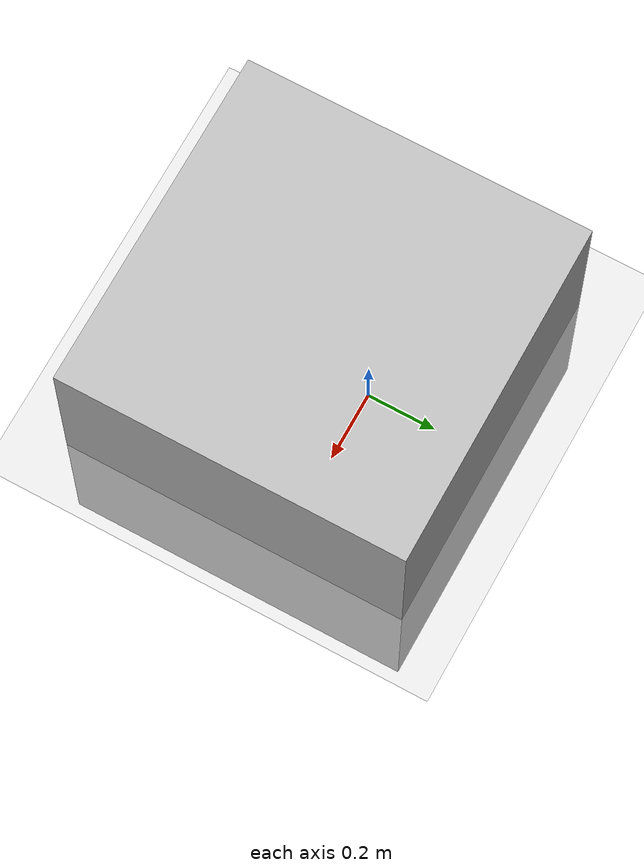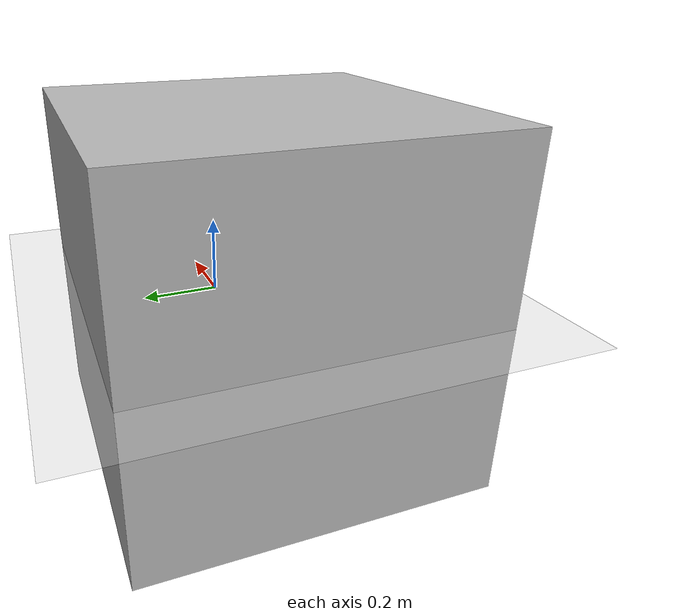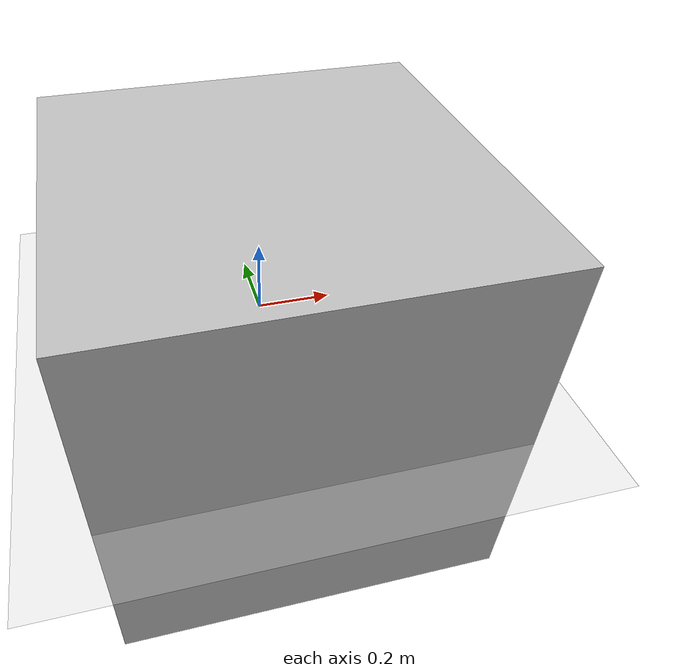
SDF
<?xml version="1.0" ?>
<sdf version="1.4">
  <world name="default">

    <light name='sun' type='directional'>
      <cast_shadows>0</cast_shadows>
      <pose frame=''>0 0 10 0 -0 0</pose>
      <diffuse>0.8 0.8 0.8 1</diffuse>
      <specular>0.2 0.2 0.2 1</specular>
      <attenuation>
        <range>1000</range>
        <constant>0.9</constant>
        <linear>0.01</linear>
        <quadratic>0.001</quadratic>
      </attenuation>
      <direction>-0.5 0.1 -0.9</direction>
    </light>

    <scene>
      <ambient>0.5 0.5 0.5 1</ambient>
      <background>0.7 0.7 0.7 1</background>
      <shadows>0</shadows>
    </scene>

    <gui fullscreen="0">
      <camera name="user_camera">
        <pose frame="">0.796037 -0.747557 0.525451 0 0.275643 2.35619</pose>
        <view_controller>orbit</view_controller>
        <projection_type>perspective</projection_type>
      </camera>
    </gui>

    <model name="ground_plane">
      <static>1</static>
      <link name="link">
        <collision name="collision">
          <geometry>
            <plane>
              <normal>0 0 1</normal>
              <size>1.0 1.0</size>
            </plane>
          </geometry>
          <surface>
            <friction>
              <ode>
                <mu>100</mu>
                <mu2>50</mu2>
              </ode>
            </friction>
            <bounce />
            <contact>
              <ode />
            </contact>
          </surface>
        </collision>
        <visual name="visual">
          <cast_shadows>0</cast_shadows>
          <geometry>
            <plane>
              <normal>0 0 1</normal>
              <size>1.0 1.0</size>
            </plane>
          </geometry>
        </visual>
        <velocity_decay>
          <linear>0</linear>
          <angular>0</angular>
        </velocity_decay>
        <self_collide>0</self_collide>
        <kinematic>0</kinematic>
        <gravity>1</gravity>
      </link>
    </model>

    <model name="green_cube">
      <include>
        <static>false</static>
        <uri>model://green_cube</uri>
        <pose>0.0 -0.13 0.001 0.0 0.0 0.0</pose>
      </include>
    </model>

    <model name="blue_cube">
      <include>
        <static>false</static>
        <uri>model://blue_cube</uri>
        <pose>0.0 0.13 0.001 0.0 0.0 0.0</pose>
      </include>
    </model>

  </world>
</sdf>

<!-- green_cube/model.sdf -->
<sdf version="1.4">
  <model name="green_cube">
    <pose>0 0 0.0 0 0 0</pose>
    <static>false</static>
    <link name="cube_link">
      <inertial>
        <mass>0.001</mass>
        <inertia> <!-- inertias are tricky to compute -->
          <!-- http://gazebosim.org/tutorials?tut=inertia&cat=build_robot -->
          <ixx>0.000083</ixx>       <!-- for a box: ixx = 0.083 * mass * (y*y + z*z) -->
          <ixy>0.0</ixy>         <!-- for a box: ixy = 0 -->
          <ixz>0.0</ixz>         <!-- for a box: ixz = 0 -->
          <iyy>0.000083</iyy>       <!-- for a box: iyy = 0.083 * mass * (x*x + z*z) -->
          <iyz>0.0</iyz>         <!-- for a box: iyz = 0 -->
          <izz>0.000083</izz>       <!-- for a box: izz = 0.083 * mass * (x*x + y*y) -->
        </inertia>
      </inertial>
      <collision name="collision">
        <geometry>
          <box>
            <size>1 1 1</size>
          </box>
        </geometry>
      </collision>
      <visual name="visual">
        <geometry>
          <box>
            <size>1 1 1</size>
          </box>
        </geometry>
      </visual>
    </link>
    <gazebo reference="cube_link">
      <material>Gazebo/Green</material>
    </gazebo>
  </model>
</sdf>

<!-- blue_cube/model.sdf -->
<sdf version="1.9">
  <model name="blue_cube">
    <pose>0 0 0 0 0 0</pose>
    <link name="link">
      <inertial><mass>0.1</mass><inertia><ixx>2.13e-5</ixx><iyy>2.13e-5</iyy><izz>2.13e-5</izz></inertia></inertial>
      <collision name="collision"><geometry><box><size>0.04 0.04 0.04</size></box></geometry><surface><friction><ode><mu>0.6</mu><mu2>0.6</mu2></ode></friction></surface></collision>
      <visual name="visual"><geometry><box><size>0.04 0.04 0.04</size></box></geometry><material><ambient>0.1 0.1 0.8 1</ambient><diffuse>0.1 0.1 0.8 1</diffuse></material></visual>
    </link>
  </model>
</sdf>
